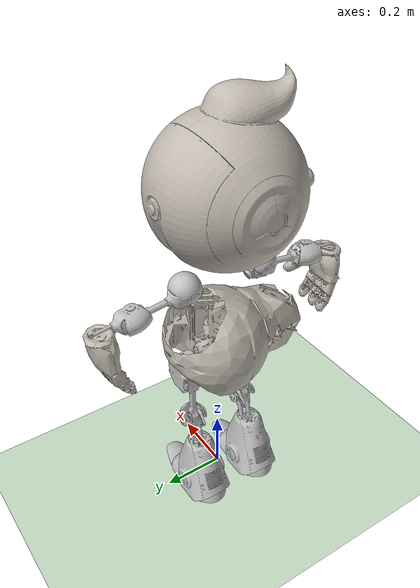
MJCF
<mujoco model="cosmo">
  <default>
    <default class="robot">
      <default class="motor-kbmb">
        <joint damping="1" armature="0.1"/>
        <motor />
      </default>
      <default class="motor-pbp">
        <joint damping="1" armature="0.1"/>
        <motor />
      </default>
      <default class="motor-pbp-knee">
        <joint damping="1" armature="0.1"/>
        <motor />
      </default>
      <default class="visual">
        <geom material="visualgeom" contype="0" conaffinity="0" group="2" quat="0.7071068 0.7071068 0 0"/>
      </default>
      <default class="collision">
        <geom material="collision_material" condim="3" contype="0" conaffinity="1" priority="1" group="1" solref="0.005 1" friction="1 0.01 0.01" />
        <equality solimp="0.99 0.999 1e-05" solref="0.005 1" />
      </default>
    </default>
  </default>

  <compiler angle="radian" />

  <asset>
    <!-- Textures -->
    <texture name="head_texture" type="2d" file="meshes_visuals/textures/head_color.png" />
    <texture name="hand_texture" type="2d" file="meshes_visuals/textures/hand_color.png" />
    <texture name="body_texture" type="2d" file="meshes_visuals/textures/body_color.png" />

    <!-- Materials -->
    <material name="visualgeom" rgba="0.75294 0.75294 0.75294 1" />
    <material name="default_material" rgba="0.7 0.7 0.7 1" />
    <material name="collision_material" rgba="1.0 0.28 0.1 0" />

    <!-- Textured materials -->
    <material name="head_material" texture="head_texture" />
    <material name="hand_material" texture="hand_texture" />
    <material name="body_material" texture="body_texture" />

    <!-- Meshes -->
    <mesh name="body_hull.STL" file="meshes/body_hull.STL" />
    <mesh name="body.STL" file="meshes_visuals/obj/body.obj" />
    <mesh name="hip_r.STL" file="meshes_visuals/obj/hip_r.obj" />
    <mesh name="adductor_l_hull.STL" file="meshes/adductor_l_hull.STL" />
    <mesh name="adductor_l.STL" file="meshes_visuals/obj/adductor_l.obj" />
    <mesh name="femur_l_hull.STL" file="meshes/femur_l_hull.STL" />
    <mesh name="femur_l.STL" file="meshes_visuals/obj/femur_l.obj" />
    <mesh name="tibia_l_hull.STL" file="meshes/tibia_l_hull.STL" />
    <mesh name="tibia_l.STL" file="meshes_visuals/obj/tibia_l.obj" />
    <mesh name="foot_l_red.STL" file="meshes/foot_l_red.STL" />
    <mesh name="foot_l.STL" file="meshes_visuals/obj/foot_l.obj" />
    <mesh name="adductor_r_hull.STL" file="meshes/adductor_r_hull.STL" />
    <mesh name="adductor_r.STL" file="meshes_visuals/obj/adductor_r.obj" />
    <mesh name="femur_r_hull.STL" file="meshes/femur_r_hull.STL" />
    <mesh name="femur_r.STL" file="meshes_visuals/obj/femur_r.obj" />
    <mesh name="tibia_r_hull.STL" file="meshes/tibia_r_hull.STL" />
    <mesh name="tibia_r.STL" file="meshes_visuals/obj/tibia_r.obj" />
    <mesh name="foot_r_red.STL" file="meshes/foot_r_red.STL" />
    <mesh name="foot_r.STL" file="meshes_visuals/obj/foot_r.obj" />
    <mesh name="clavicle_l.STL" file="meshes_visuals/obj/clavicle_l.obj" />
    <mesh name="upperarm_l.STL" file="meshes_visuals/obj/upperarm_l.obj" />
    <mesh name="forearm_l_hull.STL" file="meshes/forearm_l_hull.STL" />
    <mesh name="forearm_l.STL" file="meshes_visuals/obj/forearm_l.obj" />
    <mesh name="hand_l_hull.STL" file="meshes/hand_l_hull.STL" />
    <mesh name="hand_l.STL" file="meshes_visuals/obj/hand_l.obj" />
    <mesh name="clavicle_r.STL" file="meshes_visuals/obj/clavicle_r.obj" />
    <mesh name="upperarm_r.STL" file="meshes_visuals/obj/upperarm_r.obj" />
    <mesh name="forearm_r_hull.STL" file="meshes/forearm_r_hull.STL" />
    <mesh name="forearm_r.STL" file="meshes_visuals/obj/forearm_r.obj" />
    <mesh name="hand_r_hull.STL" file="meshes/hand_r_hull.STL" />
    <mesh name="hand_r.STL" file="meshes_visuals/obj/hand_r.obj" />
    <mesh name="neck_bottom.STL" file="meshes_visuals/obj/neck_bottom.obj" />
    <mesh name="neck_top_hull.STL" file="meshes/neck_top_hull.STL" />
    <mesh name="head.STL" file="meshes_visuals/obj/head.obj" />

    <!-- Had to add this myself -->
    <texture name="texplane" type="2d" builtin="checker" rgb1=".12 .14 .44" rgb2=".37 .55 1" width="100" height="100"/>
    <material name="MatPlane" reflectance="0.5" texture="texplane" texrepeat="1 1" texuniform="true"/>
  </asset>

  <worldbody>
    <!-- Had to add this myself -->
    <geom name="floor" pos="0 0 0" condim="3" conaffinity="15" material="MatPlane" size="100 100 0.125" rgba="0.8 0.9 0.8 1" type="plane"></geom>
    <light cutoff="100" diffuse="1 1 1" dir="-0 0 -1.3" directional="true" exponent="1" pos="0 0 1.3" specular=".1 .1 .1" castshadow="false"/>
    <light name="spotlight" mode="targetbodycom" target="base" pos="0 -1 2"/>

    <body name="base" pos="0.00000000 0.00000000 0.58075954" quat="1 0 0 0" childclass="robot">
      <freejoint name="floating_base" />
      <inertial pos="-0.014539 -0.00058048 0.087038" quat="1.0 0.0 0.0 0.0" mass="8.1972" diaginertia="0.013736 0.020824 0.019654" />
      <geom name="body_collision" pos="0 0 0" quat="1.0 0.0 0.0 0.0" type="mesh" mesh="body_hull.STL" class="collision" />
      <geom name="body_visual" pos="0 0 0" quat="0.7071068 0.7071068 0 0" material="body_material" type="mesh" mesh="body.STL" class="visual" />
      <body name="hip_l" pos="-0.065617 0.062475 -0.039049" quat="0.270595753366195 -0.6532810280864045 -0.653283427726018 0.27059674732172273">
        <joint name="hip_yaw_l" type="hinge" ref="0.0" class="motor-kbmb" range="-0.2 0.2" axis="0 0 1" />
        <inertial pos="3.4069E-05 -0.013049 -0.01716" quat="1.0 0.0 0.0 0.0" mass="0.5644" diaginertia="0.00028283 0.00040948 0.0002564" />
        <geom name="hip_l_visual" pos="0 0 0" quat="0.7071068 0.7071068 0 0" type="mesh" mesh="hip_r.STL" class="visual" />
        <body name="adductor_l" pos="0 0 0" quat="0.49999999999999817 0.5 0.5 -0.5000000000000018">
          <joint name="hip_roll_l" type="hinge" ref="0.0" class="motor-kbmb" range="-0.4 0.4" axis="0 0 -1" />
          <inertial pos="-0.0001976 -0.016016 -0.074591" quat="1.0 0.0 0.0 0.0" mass="1.354" diaginertia="0.0010301 0.0018755 0.0011209" />
          <geom name="adductor_l_collision" pos="0 0 0" quat="1.0 0.0 0.0 0.0" type="mesh" mesh="adductor_l_hull.STL" class="collision" />
          <geom name="adductor_l_visual" pos="0 0 0" quat="0.7071068 0.7071068 0 0" type="mesh" mesh="adductor_l.STL" class="visual" />
          <body name="femur_l" pos="0 0 -0.087464" quat="0.4999981633974483 0.49999999999662686 -0.49999999999662686 0.5000018366025516">
            <joint name="hip_pitch_l" type="hinge" ref="0.0" class="motor-pbp" range="-1.2 0.8" axis="0 0 -1" />
            <inertial pos="-0.012204 0.012135 -0.048378" quat="1.0 0.0 0.0 0.0" mass="1.7612" diaginertia="0.0012726 0.0012501 0.0023132" />
            <geom name="femur_l_collision" pos="0 0 0" quat="1.0 0.0 0.0 0.0" type="mesh" mesh="femur_l_hull.STL" class="collision" />
            <geom name="femur_l_visual" pos="0 0 0" quat="0.7071068 0.7071068 0 0" type="mesh" mesh="femur_l.STL" class="visual" />
            <body name="tibia_l" pos="-0.14122716186337 0.141227161863956 -0.0359999999999991" quat="0.92387953251089 0.0 0.0 -0.3826834323660477">
              <joint name="knee_pitch_l" type="hinge" ref="0.0" class="motor-pbp-knee" range="-3.0 0.0" axis="0 0 1" />
              <inertial pos="-0.1403 0.035094 -0.0058663" quat="1.0 0.0 0.0 0.0" mass="1.1745" diaginertia="0.0010357 0.0018731 0.0017459" />
              <geom name="tibia_l_collision" pos="0 0 0" quat="1.0 0.0 0.0 0.0" type="mesh" mesh="tibia_l_hull.STL" class="collision" />
              <geom name="tibia_l_visual" pos="0 0 0" quat="0.7071068 0.7071068 0 0" type="mesh" mesh="tibia_l.STL" class="visual" />
              <body name="foot_l" pos="-0.280138491200895 0.0589255524632983 0.000499999999999376" quat="0.9946217772645333 0.0 0.0 -0.10357374276881758">
                <joint name="ankle_pitch_l" type="hinge" ref="0.0" class="motor-kbmb" range="-0.4 0.4" axis="0 0 1" />
                <inertial pos="0.0069549 -0.040684 -5.0724E-05" quat="1.0 0.0 0.0 0.0" mass="0.60636" diaginertia="0.0010726 0.00056028 0.00084454" />
                <geom name="foot_l_collision" pos="0 0 0" quat="1.0 0.0 0.0 0.0" type="mesh" mesh="foot_l_red.STL" class="collision" />
                <geom name="foot_l_visual" pos="0 0 0" quat="0.7071068 0.7071068 0 0" type="mesh" mesh="foot_l.STL" class="visual" />
              </body>
            </body>
          </body>
        </body>
      </body>
      <body name="hip_r" pos="-0.065617 -0.062525 -0.039049" quat="0.270595753366195 -0.6532810280864045 -0.653283427726018 0.27059674732172273">
        <joint name="hip_yaw_r" type="hinge" ref="0.0" class="motor-kbmb" range="-0.2 0.2" axis="0 0 1" />
        <inertial pos="3.4069E-05 -0.013049 -0.01716" quat="1.0 0.0 0.0 0.0" mass="0.5644" diaginertia="0.00028283 0.00040948 0.0002564" />
        <geom name="hip_r_visual" pos="0 0 0" quat="0.7071068 0.7071068 0 0" type="mesh" mesh="hip_r.STL" class="visual" />
        <body name="adductor_r" pos="0 0 0" quat="0.49999999999999817 0.5 0.5 -0.5000000000000018">
          <joint name="hip_roll_r" type="hinge" ref="0.0" class="motor-kbmb" range="-0.4 0.4" axis="0 0 -1" />
          <inertial pos="-0.00021531 0.016016 -0.074573" quat="1.0 0.0 0.0 0.0" mass="1.354" diaginertia="0.0010303 0.0018755 0.0011207" />
          <geom name="adductor_r_collision" pos="0 0 0" quat="1.0 0.0 0.0 0.0" type="mesh" mesh="adductor_r_hull.STL" class="collision" />
          <geom name="adductor_r_visual" pos="0 0 0" quat="0.7071068 0.7071068 0 0" type="mesh" mesh="adductor_r.STL" class="visual" />
          <body name="femur_r" pos="0 0 -0.087464" quat="0.4999981633974483 0.49999999999662686 -0.49999999999662686 0.5000018366025516">
            <joint name="hip_pitch_r" type="hinge" ref="0.0" class="motor-pbp" range="-0.8 1.2" axis="0 0 1" />
            <inertial pos="-0.012233 0.012164 0.048378" quat="1.0 0.0 0.0 0.0" mass="1.7639" diaginertia="0.0012724 0.0012503 0.0023132" />
            <geom name="femur_r_collision" pos="0 0 0" quat="1.0 0.0 0.0 0.0" type="mesh" mesh="femur_r_hull.STL" class="collision" />
            <geom name="femur_r_visual" pos="0 0 0" quat="0.7071068 0.7071068 0 0" type="mesh" mesh="femur_r.STL" class="visual" />
            <body name="tibia_r" pos="-0.141227161863369 0.141227161863957 0.0360000000000009" quat="0.9238795325108891 0.0 0.0 -0.38268343236604996">
              <joint name="knee_pitch_r" type="hinge" ref="0.0" class="motor-pbp-knee" range="0.0 3.0" axis="0 0 -1" />
              <inertial pos="-0.13942 0.034771 0.0058364" quat="1.0 0.0 0.0 0.0" mass="1.171" diaginertia="0.0010368 0.0018733 0.0017456" />
              <geom name="tibia_r_collision" pos="0 0 0" quat="1.0 0.0 0.0 0.0" type="mesh" mesh="tibia_r_hull.STL" class="collision" />
              <geom name="tibia_r_visual" pos="0 0 0" quat="0.7071068 0.7071068 0 0" type="mesh" mesh="tibia_r.STL" class="visual" />
              <body name="foot_r" pos="-0.280138491200895 0.0589255524632976 -0.00049999999999914" quat="0.9946217772645334 0.0 0.0 -0.10357374276881658">
                <joint name="ankle_pitch_r" type="hinge" ref="0.0" class="motor-kbmb" range="-0.4 0.4" axis="0 0 -1" />
                <inertial pos="0.0069319 -0.040596 -1.7594E-05" quat="1.0 0.0 0.0 0.0" mass="0.604" diaginertia="0.0010727 0.00056032 0.00084469" />
                <geom name="foot_r_collision" pos="0 0 0" quat="1.0 0.0 0.0 0.0" type="mesh" mesh="foot_r_red.STL" class="collision" />
                <geom name="foot_r_visual" pos="0 0 0" quat="0.7071068 0.7071068 0 0" type="mesh" mesh="foot_r.STL" class="visual" />
              </body>
            </body>
          </body>
        </body>
      </body>
      <body name="clavicle_l" pos="-0.02978 0.12639 0.21268" quat="0.8338777081822082 -0.5519492438592412 0.0 0.0">
        <joint name="shoulder_pitch_l" type="hinge" ref="0.0" class="motor-kbmb" range="-2.0 1.0" axis="0 0 1" />
        <inertial pos="0.0039084 -0.00078059 -0.0030068" quat="1.0 0.0 0.0 0.0" mass="0.37825" diaginertia="0.00022089 0.00012864 0.00013256" />
        <geom name="clavicle_l_visual" pos="0 0 0" quat="0.7071068 0.7071068 0 0" type="mesh" mesh="clavicle_l.STL" class="visual" />
        <body name="upperarm_l" pos="0 0 0" quat="0.7071067811865462 0.0 0.7071067811865488 0.0">
          <joint name="shoulder_roll_l" type="hinge" ref="0.0" class="motor-kbmb" range="-1.1 0.4" axis="0 0 1" />
          <inertial pos="-0.11397 0.062932 7.8506E-05" quat="1.0 0.0 0.0 0.0" mass="0.46619" diaginertia="0.00025126 0.00031054 0.00019276" />
          <geom name="upperarm_l_visual" pos="0 0 0" quat="0.7071068 0.7071068 0 0" type="mesh" mesh="upperarm_l.STL" class="visual" />
          <body name="forearm_l" pos="-0.144266717541578 0.083292428207746 -0.000499999999974916" quat="0.6830127018922213 -0.6830127018922166 0.18301270189222013 -0.18301270189222138">
            <joint name="elbow_pitch_l" type="hinge" ref="0.0" class="motor-kbmb" range="0.0 1.5" axis="0 0 1" />
            <inertial pos="-0.021246 0.0075264 -0.0057214" quat="1.0 0.0 0.0 0.0" mass="0.108" diaginertia="5.3476e-05 7.47e-05 5.1769e-05" />
            <geom name="forearm_l_collision" pos="0 0 0" quat="1.0 0.0 0.0 0.0" type="mesh" mesh="forearm_l_hull.STL" class="collision" />
            <geom name="forearm_l_visual" pos="0 0 0" quat="0.7071068 0.7071068 0 0" type="mesh" mesh="forearm_l.STL" class="visual" />
            <body name="hand_l" pos="-0.103000000000009 4.8991874364808E-05 -0.00490000000001528" quat="0.49999999999999817 -0.5 -0.5000000000000018 0.5">
              <inertial pos="-0.0088755 -0.0094157 0.11508" quat="1.0 0.0 0.0 0.0" mass="0.54752" diaginertia="0.00025199 0.00043887 0.00030271" />
              <geom name="hand_l_collision" pos="0 0 0" quat="1.0 0.0 0.0 0.0" type="mesh" mesh="hand_l_hull.STL" class="collision" />
              <geom name="hand_l_visual" pos="0 0 0" quat="0.7071068 0.7071068 0 0" material="hand_material" type="mesh" mesh="hand_l.STL" class="visual" />
            </body>
          </body>
        </body>
      </body>
      <body name="clavicle_r" pos="-0.02978 -0.12644 0.21268" quat="-3.0630038532618323e-06 2.027422779332047e-06 0.5519492438555176 -0.8338777081765826">
        <joint name="shoulder_pitch_r" type="hinge" ref="0.0" class="motor-kbmb" range="-1.0 2.0" axis="0 0 1" />
        <inertial pos="-0.0043053 -0.00081166 -0.0030449" quat="1.0 0.0 0.0 0.0" mass="0.3685" diaginertia="0.00021954 0.00012797 0.00013183" />
        <geom name="clavicle_r_visual" pos="0 0 0" quat="0.7071068 0.7071068 0 0" type="mesh" mesh="clavicle_r.STL" class="visual" />
        <body name="upperarm_r" pos="0 0 0" quat="1.1423625238904151e-15 0.7071067811865462 1.1423625238904192e-15 -0.7071067811865488">
          <joint name="shoulder_roll_r" type="hinge" ref="0.0" class="motor-kbmb" range="-0.4 1.1" axis="0 0 1" />
          <inertial pos="-0.11254 -0.06215 -0.00019673" quat="1.0 0.0 0.0 0.0" mass="0.47214" diaginertia="0.00025195 0.00031124 0.00019415" />
          <geom name="upperarm_r_visual" pos="0 0 0" quat="0.7071068 0.7071068 0 0" type="mesh" mesh="upperarm_r.STL" class="visual" />
          <body name="forearm_r" pos="-0.144266717541607 -0.0832924282077503 -0.000499999999997232" quat="0.6830127018922183 0.6830127018922207 0.18301270189221902 0.18301270189221835">
            <joint name="elbow_pitch_r" type="hinge" ref="0.0" class="motor-kbmb" range="-1.5 0.0" axis="0 0 1" />
            <inertial pos="-0.021381 -0.007435 -0.0057025" quat="1.0 0.0 0.0 0.0" mass="0.10932" diaginertia="5.4201e-05 7.5872e-05 5.2534e-05" />
            <geom name="forearm_r_collision" pos="0 0 0" quat="1.0 0.0 0.0 0.0" type="mesh" mesh="forearm_r_hull.STL" class="collision" />
            <geom name="forearm_r_visual" pos="0 0 0" quat="0.7071068 0.7071068 0 0" type="mesh" mesh="forearm_r.STL" class="visual" />
            <body name="hand_r" pos="-0.103 -4.89918743357132E-05 -0.00489999999999796" quat="0.5000000000000008 -0.5000000000000026 -0.4999999999999992 0.4999999999999974">
              <inertial pos="0.009838 -0.0068272 0.088456" quat="1.0 0.0 0.0 0.0" mass="0.54702" diaginertia="0.00030569 0.00058482 0.00040624" />
              <geom name="hand_r_collision" pos="0 0 0" quat="1.0 0.0 0.0 0.0" type="mesh" mesh="hand_r_hull.STL" class="collision" />
              <geom name="hand_r_visual" pos="0 0 0" quat="0.7071068 0.7071068 0 0" material="hand_material" type="mesh" mesh="hand_r.STL" class="visual" />
            </body>
          </body>
        </body>
      </body>
      <body name="neck_bottom" pos="-0.0368176726730376 -2.47996795707832E-05 0.384063014940112" quat="1.0 0.0 0.0 0.0">
        <joint name="z_head_pan" type="hinge" ref="0.0" class="motor-kbmb" range="-1.0 1.0" axis="0 0 1" />
        <inertial pos="1.3826E-05 -0.0040512 -0.021696" quat="1.0 0.0 0.0 0.0" mass="0.46198" diaginertia="0.00026944 0.00041839 0.00021018" />
        <geom name="neck_bottom_visual" pos="0 0 0" quat="0.7071068 0.7071068 0 0" type="mesh" mesh="neck_bottom.STL" class="visual" />
        <body name="neck_top" pos="0 0 0" quat="0.49999999999999817 0.5 0.5 -0.5000000000000018">
          <joint name="z_head_tilt" type="hinge" ref="0.0" class="motor-kbmb" range="-0.5 0.5" axis="0 0 1" />
          <inertial pos="-0.13512 0.018019 0.002899" quat="1.0 0.0 0.0 0.0" mass="3.108" diaginertia="0.028772 0.033314 0.037863" />
          <geom name="neck_top_collision" pos="0 0 0" quat="1.0 0.0 0.0 0.0" type="mesh" mesh="neck_top_hull.STL" class="collision" />
          <geom name="neck_top_visual" pos="0 0 0" quat="0.7071068 0.7071068 0 0" material="head_material" type="mesh" mesh="head.STL" class="visual" />
        </body>
      </body>
      <site name="base_site" pos="0 0 0" quat="1 0 0 0" />
      <camera name="front_camera" mode="track" fovy="90.0" quat="4.329780281177467e-17 4.329780281177466e-17 0.7071067811865475 0.7071067811865476" pos="0.0 2.0 0.5" />
      <camera name="side_camera" mode="track" fovy="90.0" quat="-0.5 -0.4999999999999999 0.5 0.5000000000000001" pos="-2.0 0.0 0.5" />
    </body>
  </worldbody>

  <actuator>
    <motor name="hip_yaw_l_ctrl" joint="hip_yaw_l" class="motor-kbmb" />
    <motor name="hip_roll_l_ctrl" joint="hip_roll_l" class="motor-kbmb" />
    <motor name="hip_pitch_l_ctrl" joint="hip_pitch_l" class="motor-pbp" />
    <motor name="knee_pitch_l_ctrl" joint="knee_pitch_l" class="motor-pbp-knee" />
    <motor name="ankle_pitch_l_ctrl" joint="ankle_pitch_l" class="motor-kbmb" />
    <motor name="hip_yaw_r_ctrl" joint="hip_yaw_r" class="motor-kbmb" />
    <motor name="hip_roll_r_ctrl" joint="hip_roll_r" class="motor-kbmb" />
    <motor name="hip_pitch_r_ctrl" joint="hip_pitch_r" class="motor-pbp" />
    <motor name="knee_pitch_r_ctrl" joint="knee_pitch_r" class="motor-pbp-knee" />
    <motor name="ankle_pitch_r_ctrl" joint="ankle_pitch_r" class="motor-kbmb" />
    <motor name="shoulder_pitch_l_ctrl" joint="shoulder_pitch_l" class="motor-kbmb" />
    <motor name="shoulder_roll_l_ctrl" joint="shoulder_roll_l" class="motor-kbmb" />
    <motor name="elbow_pitch_l_ctrl" joint="elbow_pitch_l" class="motor-kbmb" />
    <motor name="shoulder_pitch_r_ctrl" joint="shoulder_pitch_r" class="motor-kbmb" />
    <motor name="shoulder_roll_r_ctrl" joint="shoulder_roll_r" class="motor-kbmb" />
    <motor name="elbow_pitch_r_ctrl" joint="elbow_pitch_r" class="motor-kbmb" />
    <motor name="z_head_pan_ctrl" joint="z_head_pan" class="motor-kbmb" />
    <motor name="z_head_tilt_ctrl" joint="z_head_tilt" class="motor-kbmb" />
  </actuator>

  <contact>
    <exclude body1="adductor_l" body2="femur_l" />
    <exclude body1="femur_l" body2="tibia_l" />
    <exclude body1="tibia_l" body2="foot_l" />
    <exclude body1="adductor_r" body2="femur_r" />
    <exclude body1="femur_r" body2="tibia_r" />
    <exclude body1="tibia_r" body2="foot_r" />
    <exclude body1="forearm_l" body2="hand_l" />
    <exclude body1="forearm_r" body2="hand_r" />
  </contact>

  <sensor>
    <framepos name="base_site_pos" objtype="site" objname="base_site" />
    <framequat name="base_site_quat" objtype="site" objname="base_site" />
    <framelinvel name="base_site_linvel" objtype="site" objname="base_site" />
    <frameangvel name="base_site_angvel" objtype="site" objname="base_site" />
    <velocimeter name="base_site_vel" site="base_site" />
  </sensor>
</mujoco>
